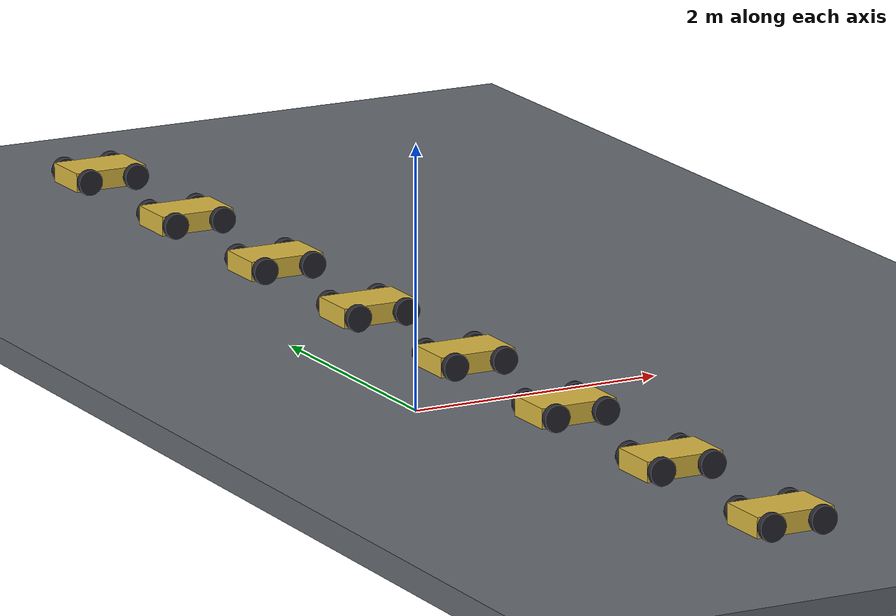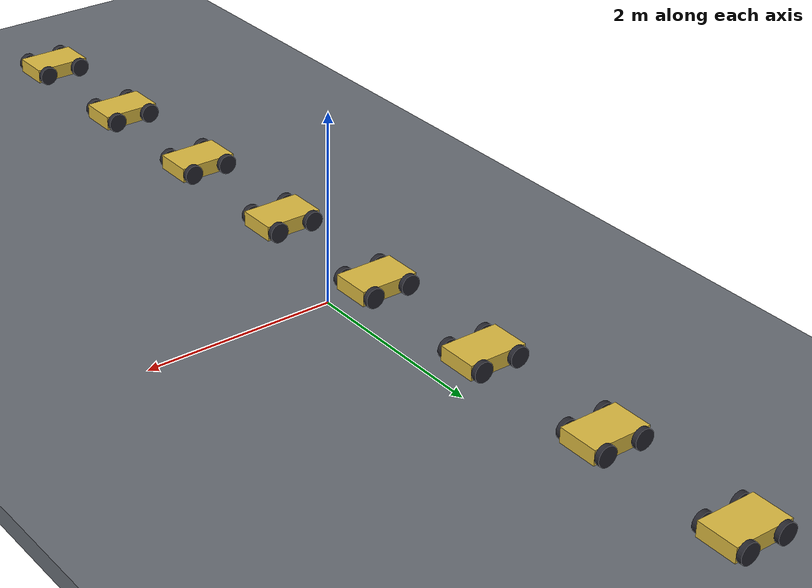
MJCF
<mujoco model="ladder0_rung11_mujoco">

  <!-- Only gravity and the timestep are set from the contract.  Everything
       else is MuJoCo's default, on purpose: this arm is the un-tuned
       reference for the solver OmniSim runs underneath. -->
  <option timestep="0.004" gravity="0 0 -9.81"/>

  <default>
    <!-- sliding / torsional / rolling.  condim defaults to 3, so only the
         first component is in force; the rest are declared for the record. -->
    <geom friction="1.0 0.005 0.0001"/>
  </default>

  <worldbody>
    <!-- Floor slab: full extents 25.200000000000003 x 13.5 x 0.2 m centred at z=0.4,
         so its top surface is at z=0.5.  Deliberately NOT at z=0. -->
    <geom name="floor" type="box" size="12.600000000000001 6.75 0.1" pos="0 0 0.4"
          rgba="0.4 0.42 0.45 1"/>

    <!-- r00: lane y = -5.250 m, commanded 2.0 rad/s -->
    <body name="r00_chassis" pos="0 -5.25 0.6">
      <freejoint name="r00_chassis_free"/>
      <geom name="r00_chassis_geom" type="box" size="0.3 0.2 0.075"
            mass="5.0" rgba="0.85 0.72 0.25 1"/>

      <body name="r00_fl" pos="0.2 0.225 0">
        <joint name="r00_fl_joint" type="hinge" axis="0 1 0"/>
        <geom name="r00_fl_geom" type="cylinder"
              fromto="0 -0.025 0  0 0.025 0" size="0.1" mass="0.5"
              rgba="0.15 0.15 0.18 1"/>
      </body>

      <body name="r00_fr" pos="0.2 -0.225 0">
        <joint name="r00_fr_joint" type="hinge" axis="0 1 0"/>
        <geom name="r00_fr_geom" type="cylinder"
              fromto="0 -0.025 0  0 0.025 0" size="0.1" mass="0.5"
              rgba="0.15 0.15 0.18 1"/>
      </body>

      <body name="r00_rl" pos="-0.2 0.225 0">
        <joint name="r00_rl_joint" type="hinge" axis="0 1 0"/>
        <geom name="r00_rl_geom" type="cylinder"
              fromto="0 -0.025 0  0 0.025 0" size="0.1" mass="0.5"
              rgba="0.15 0.15 0.18 1"/>
      </body>

      <body name="r00_rr" pos="-0.2 -0.225 0">
        <joint name="r00_rr_joint" type="hinge" axis="0 1 0"/>
        <geom name="r00_rr_geom" type="cylinder"
              fromto="0 -0.025 0  0 0.025 0" size="0.1" mass="0.5"
              rgba="0.15 0.15 0.18 1"/>
      </body>
    </body>

    <!-- r01: lane y = -3.750 m, commanded 3.0 rad/s -->
    <body name="r01_chassis" pos="0 -3.75 0.6">
      <freejoint name="r01_chassis_free"/>
      <geom name="r01_chassis_geom" type="box" size="0.3 0.2 0.075"
            mass="5.0" rgba="0.85 0.72 0.25 1"/>

      <body name="r01_fl" pos="0.2 0.225 0">
        <joint name="r01_fl_joint" type="hinge" axis="0 1 0"/>
        <geom name="r01_fl_geom" type="cylinder"
              fromto="0 -0.025 0  0 0.025 0" size="0.1" mass="0.5"
              rgba="0.15 0.15 0.18 1"/>
      </body>

      <body name="r01_fr" pos="0.2 -0.225 0">
        <joint name="r01_fr_joint" type="hinge" axis="0 1 0"/>
        <geom name="r01_fr_geom" type="cylinder"
              fromto="0 -0.025 0  0 0.025 0" size="0.1" mass="0.5"
              rgba="0.15 0.15 0.18 1"/>
      </body>

      <body name="r01_rl" pos="-0.2 0.225 0">
        <joint name="r01_rl_joint" type="hinge" axis="0 1 0"/>
        <geom name="r01_rl_geom" type="cylinder"
              fromto="0 -0.025 0  0 0.025 0" size="0.1" mass="0.5"
              rgba="0.15 0.15 0.18 1"/>
      </body>

      <body name="r01_rr" pos="-0.2 -0.225 0">
        <joint name="r01_rr_joint" type="hinge" axis="0 1 0"/>
        <geom name="r01_rr_geom" type="cylinder"
              fromto="0 -0.025 0  0 0.025 0" size="0.1" mass="0.5"
              rgba="0.15 0.15 0.18 1"/>
      </body>
    </body>

    <!-- r02: lane y = -2.250 m, commanded 4.0 rad/s -->
    <body name="r02_chassis" pos="0 -2.25 0.6">
      <freejoint name="r02_chassis_free"/>
      <geom name="r02_chassis_geom" type="box" size="0.3 0.2 0.075"
            mass="5.0" rgba="0.85 0.72 0.25 1"/>

      <body name="r02_fl" pos="0.2 0.225 0">
        <joint name="r02_fl_joint" type="hinge" axis="0 1 0"/>
        <geom name="r02_fl_geom" type="cylinder"
              fromto="0 -0.025 0  0 0.025 0" size="0.1" mass="0.5"
              rgba="0.15 0.15 0.18 1"/>
      </body>

      <body name="r02_fr" pos="0.2 -0.225 0">
        <joint name="r02_fr_joint" type="hinge" axis="0 1 0"/>
        <geom name="r02_fr_geom" type="cylinder"
              fromto="0 -0.025 0  0 0.025 0" size="0.1" mass="0.5"
              rgba="0.15 0.15 0.18 1"/>
      </body>

      <body name="r02_rl" pos="-0.2 0.225 0">
        <joint name="r02_rl_joint" type="hinge" axis="0 1 0"/>
        <geom name="r02_rl_geom" type="cylinder"
              fromto="0 -0.025 0  0 0.025 0" size="0.1" mass="0.5"
              rgba="0.15 0.15 0.18 1"/>
      </body>

      <body name="r02_rr" pos="-0.2 -0.225 0">
        <joint name="r02_rr_joint" type="hinge" axis="0 1 0"/>
        <geom name="r02_rr_geom" type="cylinder"
              fromto="0 -0.025 0  0 0.025 0" size="0.1" mass="0.5"
              rgba="0.15 0.15 0.18 1"/>
      </body>
    </body>

    <!-- r03: lane y = -0.750 m, commanded 5.0 rad/s -->
    <body name="r03_chassis" pos="0 -0.75 0.6">
      <freejoint name="r03_chassis_free"/>
      <geom name="r03_chassis_geom" type="box" size="0.3 0.2 0.075"
            mass="5.0" rgba="0.85 0.72 0.25 1"/>

      <body name="r03_fl" pos="0.2 0.225 0">
        <joint name="r03_fl_joint" type="hinge" axis="0 1 0"/>
        <geom name="r03_fl_geom" type="cylinder"
              fromto="0 -0.025 0  0 0.025 0" size="0.1" mass="0.5"
              rgba="0.15 0.15 0.18 1"/>
      </body>

      <body name="r03_fr" pos="0.2 -0.225 0">
        <joint name="r03_fr_joint" type="hinge" axis="0 1 0"/>
        <geom name="r03_fr_geom" type="cylinder"
              fromto="0 -0.025 0  0 0.025 0" size="0.1" mass="0.5"
              rgba="0.15 0.15 0.18 1"/>
      </body>

      <body name="r03_rl" pos="-0.2 0.225 0">
        <joint name="r03_rl_joint" type="hinge" axis="0 1 0"/>
        <geom name="r03_rl_geom" type="cylinder"
              fromto="0 -0.025 0  0 0.025 0" size="0.1" mass="0.5"
              rgba="0.15 0.15 0.18 1"/>
      </body>

      <body name="r03_rr" pos="-0.2 -0.225 0">
        <joint name="r03_rr_joint" type="hinge" axis="0 1 0"/>
        <geom name="r03_rr_geom" type="cylinder"
              fromto="0 -0.025 0  0 0.025 0" size="0.1" mass="0.5"
              rgba="0.15 0.15 0.18 1"/>
      </body>
    </body>

    <!-- r04: lane y = +0.750 m, commanded 6.0 rad/s -->
    <body name="r04_chassis" pos="0 0.75 0.6">
      <freejoint name="r04_chassis_free"/>
      <geom name="r04_chassis_geom" type="box" size="0.3 0.2 0.075"
            mass="5.0" rgba="0.85 0.72 0.25 1"/>

      <body name="r04_fl" pos="0.2 0.225 0">
        <joint name="r04_fl_joint" type="hinge" axis="0 1 0"/>
        <geom name="r04_fl_geom" type="cylinder"
              fromto="0 -0.025 0  0 0.025 0" size="0.1" mass="0.5"
              rgba="0.15 0.15 0.18 1"/>
      </body>

      <body name="r04_fr" pos="0.2 -0.225 0">
        <joint name="r04_fr_joint" type="hinge" axis="0 1 0"/>
        <geom name="r04_fr_geom" type="cylinder"
              fromto="0 -0.025 0  0 0.025 0" size="0.1" mass="0.5"
              rgba="0.15 0.15 0.18 1"/>
      </body>

      <body name="r04_rl" pos="-0.2 0.225 0">
        <joint name="r04_rl_joint" type="hinge" axis="0 1 0"/>
        <geom name="r04_rl_geom" type="cylinder"
              fromto="0 -0.025 0  0 0.025 0" size="0.1" mass="0.5"
              rgba="0.15 0.15 0.18 1"/>
      </body>

      <body name="r04_rr" pos="-0.2 -0.225 0">
        <joint name="r04_rr_joint" type="hinge" axis="0 1 0"/>
        <geom name="r04_rr_geom" type="cylinder"
              fromto="0 -0.025 0  0 0.025 0" size="0.1" mass="0.5"
              rgba="0.15 0.15 0.18 1"/>
      </body>
    </body>

    <!-- r05: lane y = +2.250 m, commanded 2.0 rad/s -->
    <body name="r05_chassis" pos="0 2.25 0.6">
      <freejoint name="r05_chassis_free"/>
      <geom name="r05_chassis_geom" type="box" size="0.3 0.2 0.075"
            mass="5.0" rgba="0.85 0.72 0.25 1"/>

      <body name="r05_fl" pos="0.2 0.225 0">
        <joint name="r05_fl_joint" type="hinge" axis="0 1 0"/>
        <geom name="r05_fl_geom" type="cylinder"
              fromto="0 -0.025 0  0 0.025 0" size="0.1" mass="0.5"
              rgba="0.15 0.15 0.18 1"/>
      </body>

      <body name="r05_fr" pos="0.2 -0.225 0">
        <joint name="r05_fr_joint" type="hinge" axis="0 1 0"/>
        <geom name="r05_fr_geom" type="cylinder"
              fromto="0 -0.025 0  0 0.025 0" size="0.1" mass="0.5"
              rgba="0.15 0.15 0.18 1"/>
      </body>

      <body name="r05_rl" pos="-0.2 0.225 0">
        <joint name="r05_rl_joint" type="hinge" axis="0 1 0"/>
        <geom name="r05_rl_geom" type="cylinder"
              fromto="0 -0.025 0  0 0.025 0" size="0.1" mass="0.5"
              rgba="0.15 0.15 0.18 1"/>
      </body>

      <body name="r05_rr" pos="-0.2 -0.225 0">
        <joint name="r05_rr_joint" type="hinge" axis="0 1 0"/>
        <geom name="r05_rr_geom" type="cylinder"
              fromto="0 -0.025 0  0 0.025 0" size="0.1" mass="0.5"
              rgba="0.15 0.15 0.18 1"/>
      </body>
    </body>

    <!-- r06: lane y = +3.750 m, commanded 3.0 rad/s -->
    <body name="r06_chassis" pos="0 3.75 0.6">
      <freejoint name="r06_chassis_free"/>
      <geom name="r06_chassis_geom" type="box" size="0.3 0.2 0.075"
            mass="5.0" rgba="0.85 0.72 0.25 1"/>

      <body name="r06_fl" pos="0.2 0.225 0">
        <joint name="r06_fl_joint" type="hinge" axis="0 1 0"/>
        <geom name="r06_fl_geom" type="cylinder"
              fromto="0 -0.025 0  0 0.025 0" size="0.1" mass="0.5"
              rgba="0.15 0.15 0.18 1"/>
      </body>

      <body name="r06_fr" pos="0.2 -0.225 0">
        <joint name="r06_fr_joint" type="hinge" axis="0 1 0"/>
        <geom name="r06_fr_geom" type="cylinder"
              fromto="0 -0.025 0  0 0.025 0" size="0.1" mass="0.5"
              rgba="0.15 0.15 0.18 1"/>
      </body>

      <body name="r06_rl" pos="-0.2 0.225 0">
        <joint name="r06_rl_joint" type="hinge" axis="0 1 0"/>
        <geom name="r06_rl_geom" type="cylinder"
              fromto="0 -0.025 0  0 0.025 0" size="0.1" mass="0.5"
              rgba="0.15 0.15 0.18 1"/>
      </body>

      <body name="r06_rr" pos="-0.2 -0.225 0">
        <joint name="r06_rr_joint" type="hinge" axis="0 1 0"/>
        <geom name="r06_rr_geom" type="cylinder"
              fromto="0 -0.025 0  0 0.025 0" size="0.1" mass="0.5"
              rgba="0.15 0.15 0.18 1"/>
      </body>
    </body>

    <!-- r07: lane y = +5.250 m, commanded 4.0 rad/s -->
    <body name="r07_chassis" pos="0 5.25 0.6">
      <freejoint name="r07_chassis_free"/>
      <geom name="r07_chassis_geom" type="box" size="0.3 0.2 0.075"
            mass="5.0" rgba="0.85 0.72 0.25 1"/>

      <body name="r07_fl" pos="0.2 0.225 0">
        <joint name="r07_fl_joint" type="hinge" axis="0 1 0"/>
        <geom name="r07_fl_geom" type="cylinder"
              fromto="0 -0.025 0  0 0.025 0" size="0.1" mass="0.5"
              rgba="0.15 0.15 0.18 1"/>
      </body>

      <body name="r07_fr" pos="0.2 -0.225 0">
        <joint name="r07_fr_joint" type="hinge" axis="0 1 0"/>
        <geom name="r07_fr_geom" type="cylinder"
              fromto="0 -0.025 0  0 0.025 0" size="0.1" mass="0.5"
              rgba="0.15 0.15 0.18 1"/>
      </body>

      <body name="r07_rl" pos="-0.2 0.225 0">
        <joint name="r07_rl_joint" type="hinge" axis="0 1 0"/>
        <geom name="r07_rl_geom" type="cylinder"
              fromto="0 -0.025 0  0 0.025 0" size="0.1" mass="0.5"
              rgba="0.15 0.15 0.18 1"/>
      </body>

      <body name="r07_rr" pos="-0.2 -0.225 0">
        <joint name="r07_rr_joint" type="hinge" axis="0 1 0"/>
        <geom name="r07_rr_geom" type="cylinder"
              fromto="0 -0.025 0  0 0.025 0" size="0.1" mass="0.5"
              rgba="0.15 0.15 0.18 1"/>
      </body>
    </body>
  </worldbody>

  <actuator>
    <!-- Deadbeat velocity servo: kv = I/dt = 0.625000, half the
         explicit-Euler stability bound 2I/dt, for a wheel's
         own I = m r^2 / 2 = 0.002500 kg m^2. -->
    <velocity name="r00_fl_motor" joint="r00_fl_joint" kv="0.625000"/>
    <velocity name="r00_fr_motor" joint="r00_fr_joint" kv="0.625000"/>
    <velocity name="r00_rl_motor" joint="r00_rl_joint" kv="0.625000"/>
    <velocity name="r00_rr_motor" joint="r00_rr_joint" kv="0.625000"/>
    <!-- Deadbeat velocity servo: kv = I/dt = 0.625000, half the
         explicit-Euler stability bound 2I/dt, for a wheel's
         own I = m r^2 / 2 = 0.002500 kg m^2. -->
    <velocity name="r01_fl_motor" joint="r01_fl_joint" kv="0.625000"/>
    <velocity name="r01_fr_motor" joint="r01_fr_joint" kv="0.625000"/>
    <velocity name="r01_rl_motor" joint="r01_rl_joint" kv="0.625000"/>
    <velocity name="r01_rr_motor" joint="r01_rr_joint" kv="0.625000"/>
    <!-- Deadbeat velocity servo: kv = I/dt = 0.625000, half the
         explicit-Euler stability bound 2I/dt, for a wheel's
         own I = m r^2 / 2 = 0.002500 kg m^2. -->
    <velocity name="r02_fl_motor" joint="r02_fl_joint" kv="0.625000"/>
    <velocity name="r02_fr_motor" joint="r02_fr_joint" kv="0.625000"/>
    <velocity name="r02_rl_motor" joint="r02_rl_joint" kv="0.625000"/>
    <velocity name="r02_rr_motor" joint="r02_rr_joint" kv="0.625000"/>
    <!-- Deadbeat velocity servo: kv = I/dt = 0.625000, half the
         explicit-Euler stability bound 2I/dt, for a wheel's
         own I = m r^2 / 2 = 0.002500 kg m^2. -->
    <velocity name="r03_fl_motor" joint="r03_fl_joint" kv="0.625000"/>
    <velocity name="r03_fr_motor" joint="r03_fr_joint" kv="0.625000"/>
    <velocity name="r03_rl_motor" joint="r03_rl_joint" kv="0.625000"/>
    <velocity name="r03_rr_motor" joint="r03_rr_joint" kv="0.625000"/>
    <!-- Deadbeat velocity servo: kv = I/dt = 0.625000, half the
         explicit-Euler stability bound 2I/dt, for a wheel's
         own I = m r^2 / 2 = 0.002500 kg m^2. -->
    <velocity name="r04_fl_motor" joint="r04_fl_joint" kv="0.625000"/>
    <velocity name="r04_fr_motor" joint="r04_fr_joint" kv="0.625000"/>
    <velocity name="r04_rl_motor" joint="r04_rl_joint" kv="0.625000"/>
    <velocity name="r04_rr_motor" joint="r04_rr_joint" kv="0.625000"/>
    <!-- Deadbeat velocity servo: kv = I/dt = 0.625000, half the
         explicit-Euler stability bound 2I/dt, for a wheel's
         own I = m r^2 / 2 = 0.002500 kg m^2. -->
    <velocity name="r05_fl_motor" joint="r05_fl_joint" kv="0.625000"/>
    <velocity name="r05_fr_motor" joint="r05_fr_joint" kv="0.625000"/>
    <velocity name="r05_rl_motor" joint="r05_rl_joint" kv="0.625000"/>
    <velocity name="r05_rr_motor" joint="r05_rr_joint" kv="0.625000"/>
    <!-- Deadbeat velocity servo: kv = I/dt = 0.625000, half the
         explicit-Euler stability bound 2I/dt, for a wheel's
         own I = m r^2 / 2 = 0.002500 kg m^2. -->
    <velocity name="r06_fl_motor" joint="r06_fl_joint" kv="0.625000"/>
    <velocity name="r06_fr_motor" joint="r06_fr_joint" kv="0.625000"/>
    <velocity name="r06_rl_motor" joint="r06_rl_joint" kv="0.625000"/>
    <velocity name="r06_rr_motor" joint="r06_rr_joint" kv="0.625000"/>
    <!-- Deadbeat velocity servo: kv = I/dt = 0.625000, half the
         explicit-Euler stability bound 2I/dt, for a wheel's
         own I = m r^2 / 2 = 0.002500 kg m^2. -->
    <velocity name="r07_fl_motor" joint="r07_fl_joint" kv="0.625000"/>
    <velocity name="r07_fr_motor" joint="r07_fr_joint" kv="0.625000"/>
    <velocity name="r07_rl_motor" joint="r07_rl_joint" kv="0.625000"/>
    <velocity name="r07_rr_motor" joint="r07_rr_joint" kv="0.625000"/>
  </actuator>

</mujoco>
